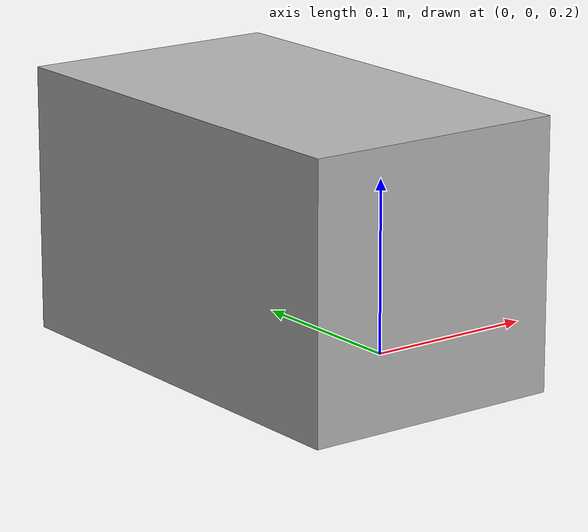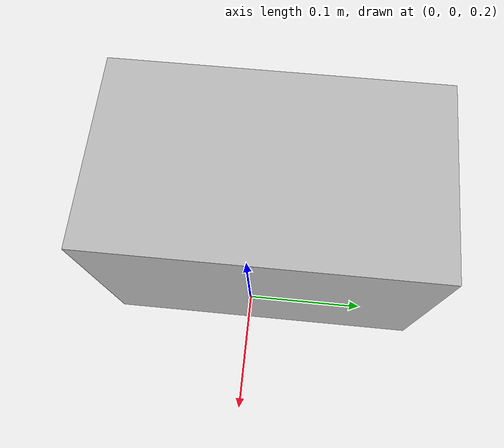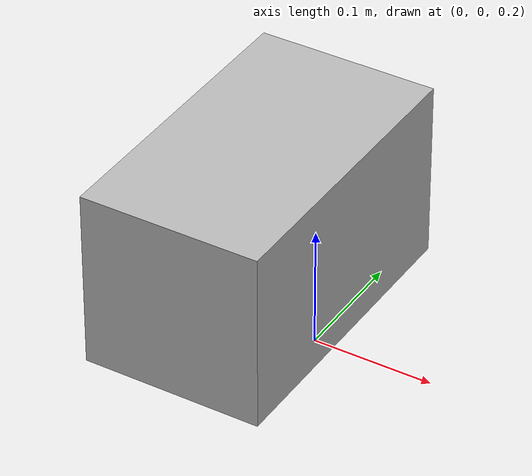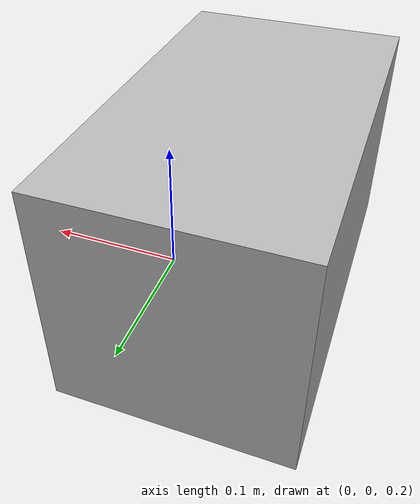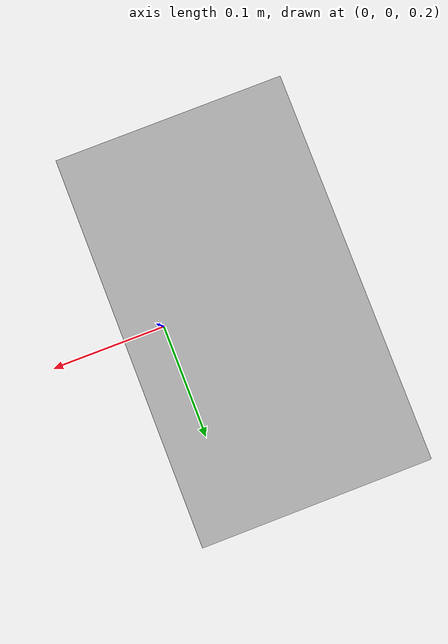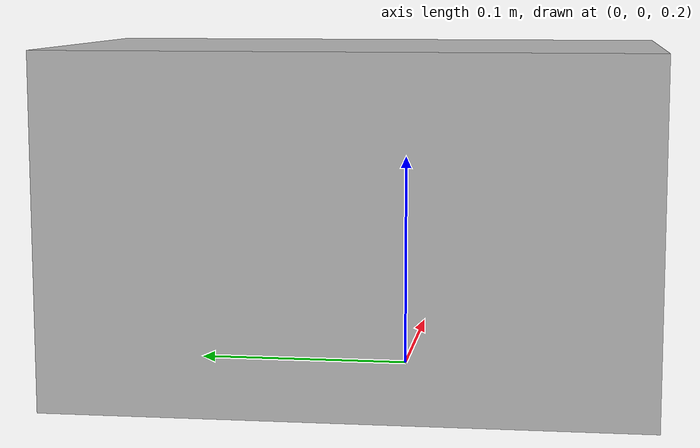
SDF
<?xml version="1.0" ?>
<sdf version="1.6">
  <model name="small_box">
    <static>false</static>
    <link name="link">
      <pose>-0.055475 0.012795 0.28 0 -0 0</pose>
      <inertial>
        <mass>0.1</mass>  <!-- Set the mass to 0.2 kg (200 grams) -->

        <inertia>
          <!-- Inertia values, calculated for a 0.5m x 0.5m x 0.5m box -->
          <ixx>0.001042</ixx>
          <iyy>0.000854</iyy>
          <izz>0.000469</izz>
          <ixy>0.0</ixy>
          <ixz>0.0</ixz>
          <iyz>0.0</iyz>
        </inertia>
      </inertial>
      <visual name="visual">
        <geometry>
          <box>
            <size>0.15 0.255 0.15</size>
          </box>
        </geometry>
      </visual>
      <collision name="collision">
        <geometry>
          <box>
            <size>0.15 0.255 0.15</size>
          </box>
        </geometry>
      </collision>
    </link>
  </model>
</sdf>
